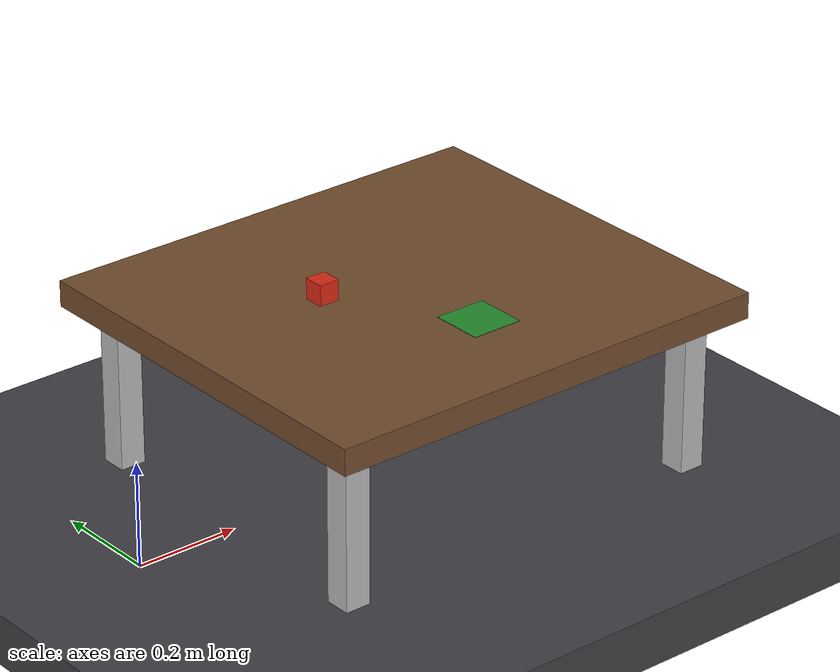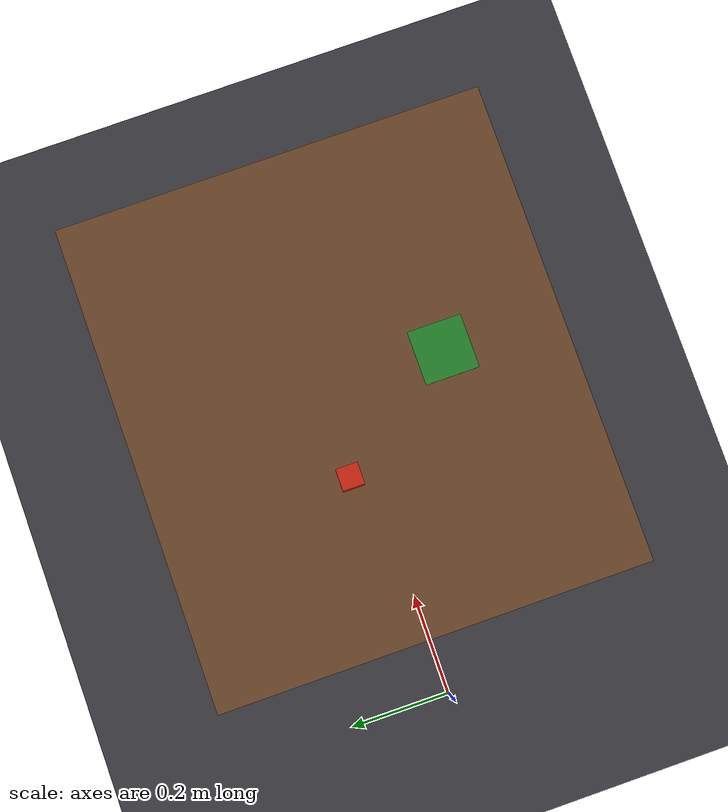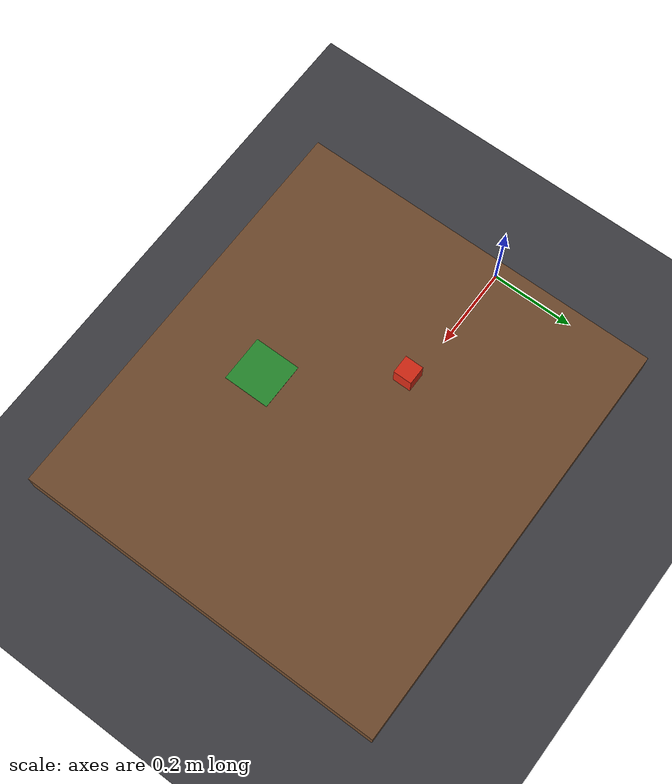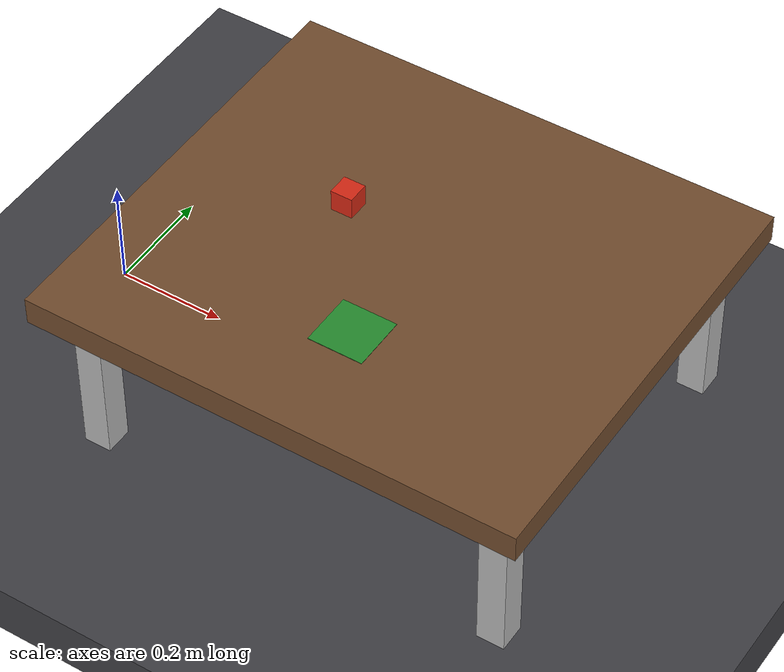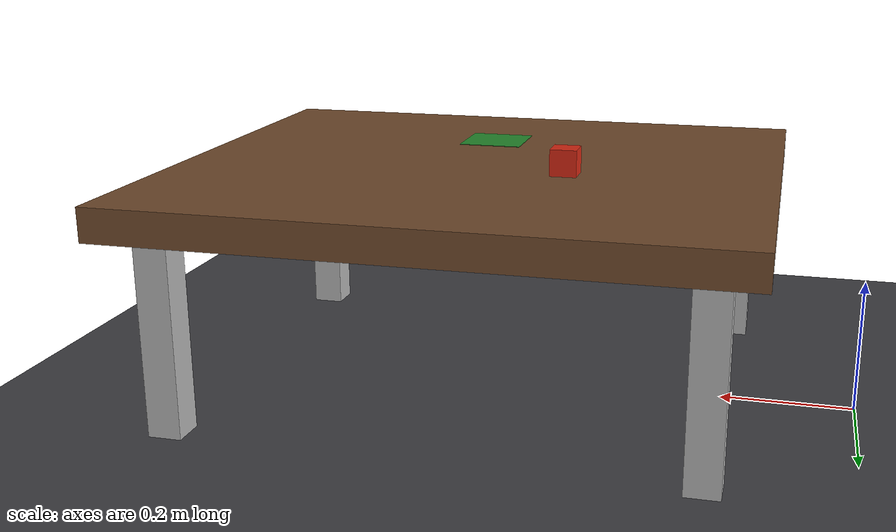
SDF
<?xml version="1.0" ?>
<sdf version="1.9">
  <world name="panda_pick_place">
    <gravity>0 0 -9.81</gravity>
    <physics name="dart_physics" type="dart">
      <max_step_size>0.001</max_step_size>
      <real_time_factor>1.0</real_time_factor>
      <real_time_update_rate>1000</real_time_update_rate>
    </physics>
    <plugin filename="gz-sim-physics-system" name="gz::sim::systems::Physics"/>
    <plugin filename="gz-sim-user-commands-system" name="gz::sim::systems::UserCommands"/>
    <plugin filename="gz-sim-scene-broadcaster-system" name="gz::sim::systems::SceneBroadcaster"/>
    <plugin filename="gz-sim-contact-system" name="gz::sim::systems::Contact"/>

    <light name="sun" type="directional">
      <pose>0 0 5 0 0 0</pose>
      <cast_shadows>true</cast_shadows>
      <diffuse>0.8 0.8 0.8 1</diffuse>
      <direction>-0.5 0.1 -0.9</direction>
    </light>

    <model name="floor">
      <static>true</static>
      <link name="link">
        <collision name="collision"><pose>0 0 -0.05 0 0 0</pose><geometry><box><size>10 10 0.1</size></box></geometry></collision>
        <visual name="visual"><pose>0 0 -0.05 0 0 0</pose><geometry><box><size>10 10 0.1</size></box></geometry>
          <material><ambient>0.25 0.25 0.27 1</ambient><diffuse>0.25 0.25 0.27 1</diffuse></material>
        </visual>
      </link>
    </model>

    <model name="table">
      <static>true</static>
      <link name="link">
        <collision name="top_collision"><pose>0.58 0 0.325 0 0 0</pose><geometry><box><size>0.90 0.80 0.05</size></box></geometry></collision>
        <visual name="top_visual"><pose>0.58 0 0.325 0 0 0</pose><geometry><box><size>0.90 0.80 0.05</size></box></geometry>
          <material><ambient>0.45 0.30 0.18 1</ambient><diffuse>0.45 0.30 0.18 1</diffuse></material>
        </visual>
        <collision name="leg_fl_collision"><pose>0.20 0.32 0.15 0 0 0</pose><geometry><box><size>0.05 0.05 0.30</size></box></geometry></collision>
        <collision name="leg_fr_collision"><pose>0.20 -0.32 0.15 0 0 0</pose><geometry><box><size>0.05 0.05 0.30</size></box></geometry></collision>
        <collision name="leg_bl_collision"><pose>0.96 0.32 0.15 0 0 0</pose><geometry><box><size>0.05 0.05 0.30</size></box></geometry></collision>
        <collision name="leg_br_collision"><pose>0.96 -0.32 0.15 0 0 0</pose><geometry><box><size>0.05 0.05 0.30</size></box></geometry></collision>
        <visual name="leg_fl_visual"><pose>0.20 0.32 0.15 0 0 0</pose><geometry><box><size>0.05 0.05 0.30</size></box></geometry></visual>
        <visual name="leg_fr_visual"><pose>0.20 -0.32 0.15 0 0 0</pose><geometry><box><size>0.05 0.05 0.30</size></box></geometry></visual>
        <visual name="leg_bl_visual"><pose>0.96 0.32 0.15 0 0 0</pose><geometry><box><size>0.05 0.05 0.30</size></box></geometry></visual>
        <visual name="leg_br_visual"><pose>0.96 -0.32 0.15 0 0 0</pose><geometry><box><size>0.05 0.05 0.30</size></box></geometry></visual>
        <sensor name="table_contact" type="contact">
          <always_on>true</always_on><update_rate>100</update_rate>
          <contact><collision>top_collision</collision></contact>
        </sensor>
      </link>
    </model>

    <model name="tray">
      <static>true</static>
      <pose>0.60 -0.18 0.37 0 0 0</pose>
      <link name="link">
        <collision name="tray_floor"><pose>0 0 -0.0195 0 0 0</pose><geometry><box><size>0.10 0.10 0.001</size></box></geometry></collision>
        <collision name="tray_north"><pose>0 0.049 -0.0095 0 0 0</pose><geometry><box><size>0.10 0.002 0.02</size></box></geometry></collision>
        <collision name="tray_south"><pose>0 -0.049 -0.0095 0 0 0</pose><geometry><box><size>0.10 0.002 0.02</size></box></geometry></collision>
        <collision name="tray_east"><pose>0.049 0 -0.0095 0 0 0</pose><geometry><box><size>0.002 0.10 0.02</size></box></geometry></collision>
        <collision name="tray_west"><pose>-0.049 0 -0.0095 0 0 0</pose><geometry><box><size>0.002 0.10 0.02</size></box></geometry></collision>
        <visual name="placement_area"><pose>0 0 -0.0195 0 0 0</pose>
          <geometry><box><size>0.10 0.10 0.001</size></box></geometry>
          <material><ambient>0.15 0.55 0.18 1</ambient><diffuse>0.15 0.55 0.18 1</diffuse></material>
        </visual>
      </link>
      <plugin filename="gz-sim-pose-publisher-system" name="gz::sim::systems::PosePublisher">
        <publish_link_pose>true</publish_link_pose><publish_model_pose>true</publish_model_pose>
        <use_pose_vector_msg>true</use_pose_vector_msg><update_frequency>30</update_frequency>
        <topic>/panda_gz/tray/pose</topic>
      </plugin>
    </model>

    <model name="workpiece">
      <pose>0.44 0.05 0.37 0 0 0</pose>
      <link name="link">
        <inertial><mass>0.08</mass><inertia><ixx>1.0667e-5</ixx><iyy>1.0667e-5</iyy><izz>1.0667e-5</izz></inertia></inertial>
        <collision name="collision">
          <geometry><box><size>0.04 0.04 0.04</size></box></geometry>
          <surface>
            <friction><ode><mu>1.2</mu><mu2>1.2</mu2></ode></friction>
            <contact><ode><kp>1000000</kp><kd>100</kd></ode></contact>
          </surface>
        </collision>
        <visual name="visual"><geometry><box><size>0.04 0.04 0.04</size></box></geometry>
          <material><ambient>0.85 0.16 0.08 1</ambient><diffuse>0.85 0.16 0.08 1</diffuse></material>
        </visual>
        <sensor name="workpiece_contact" type="contact">
          <always_on>true</always_on><update_rate>100</update_rate>
          <contact><collision>collision</collision></contact>
        </sensor>
      </link>
      <plugin filename="gz-sim-pose-publisher-system" name="gz::sim::systems::PosePublisher">
        <publish_link_pose>true</publish_link_pose><publish_model_pose>true</publish_model_pose>
        <use_pose_vector_msg>true</use_pose_vector_msg><update_frequency>30</update_frequency>
        <topic>/panda_gz/workpiece/pose</topic>
      </plugin>
    </model>
  </world>
</sdf>
